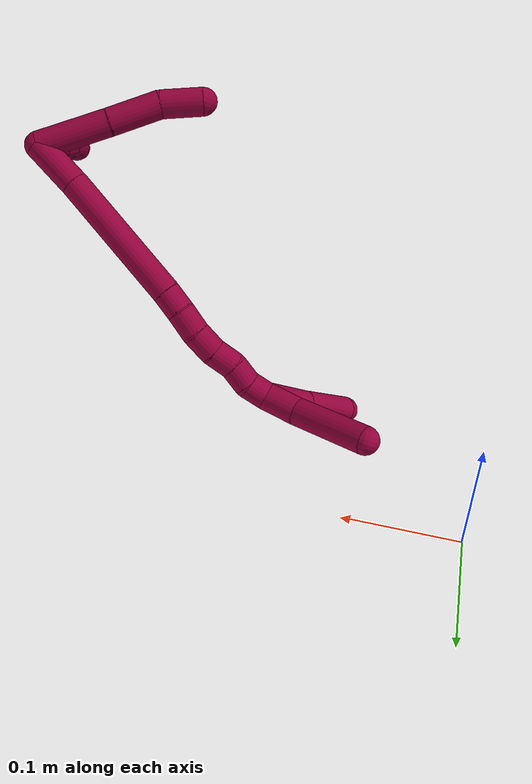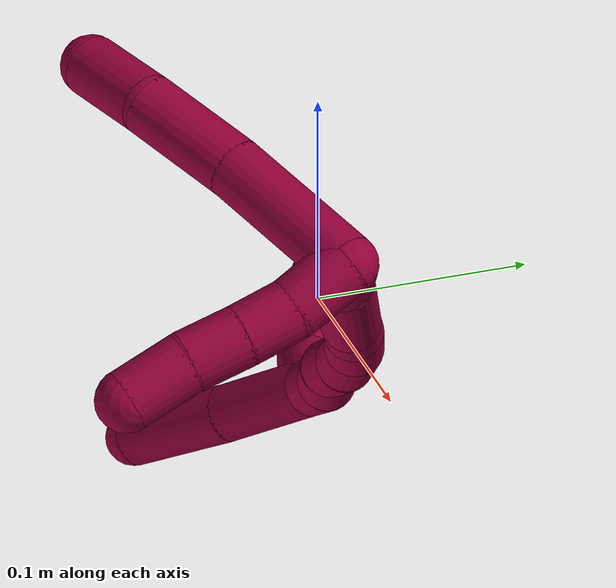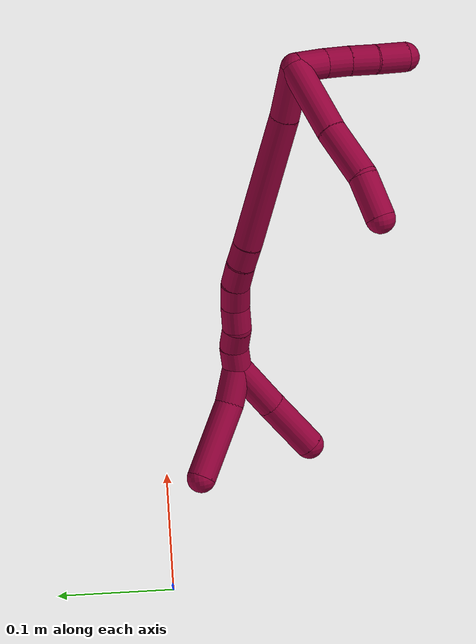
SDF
<sdf version="1.7">
 <world name="default">
  <model name="8">
   <static>0</static>
   <link name="8">
    <collision name="collision-cylinder-e_1_2_8">
     <pose>-0.012413 0.015665 -0.025668 -2.59365 -0.391475 1.22884</pose>
     <geometry><cylinder><radius>0.0125</radius><length>0.065064</length></cylinder></geometry>
     <surface>
      <friction><ode><mu>1.16</mu><mu2>1.16</mu2><slip1>0</slip1><slip2>0</slip2></ode></friction>
      <contact><ode><kp>1e+06</kp><kd>1</kd><max_vel>0</max_vel><min_depth>0.001</min_depth></ode></contact>
     </surface>
    </collision>
    <visual name="visual-cylinder-e_1_2_8">
     <pose>-0.012413 0.015665 -0.025668 -2.59365 -0.391475 1.22884</pose>
     <geometry><cylinder><radius>0.0125</radius><length>0.065064</length></cylinder></geometry>
     <material><ambient>0.584314 0 0.227451 1</ambient></material>
    </visual>
    <collision name="collision-cylinder-e_2_8_9">
     <pose>-0.035643 0.041967 -0.06945 -2.61057 -0.475564 1.45596</pose>
     <geometry><cylinder><radius>0.0125</radius><length>0.047254</length></cylinder></geometry>
     <surface>
      <friction><ode><mu>1.16</mu><mu2>1.16</mu2><slip1>0</slip1><slip2>0</slip2></ode></friction>
      <contact><ode><kp>1e+06</kp><kd>1</kd><max_vel>0</max_vel><min_depth>0.001</min_depth></ode></contact>
     </surface>
    </collision>
    <visual name="visual-cylinder-e_2_8_9">
     <pose>-0.035643 0.041967 -0.06945 -2.61057 -0.475564 1.45596</pose>
     <geometry><cylinder><radius>0.0125</radius><length>0.047254</length></cylinder></geometry>
     <material><ambient>0.584314 0 0.227451 1</ambient></material>
    </visual>
    <collision name="collision-cylinder-e_3_9_6">
     <pose>-0.051355 0.058505 -0.104773 -2.81132 -0.262801 1.34095</pose>
     <geometry><cylinder><radius>0.0125</radius><length>0.037682</length></cylinder></geometry>
     <surface>
      <friction><ode><mu>1.16</mu><mu2>1.16</mu2><slip1>0</slip1><slip2>0</slip2></ode></friction>
      <contact><ode><kp>1e+06</kp><kd>1</kd><max_vel>0</max_vel><min_depth>0.001</min_depth></ode></contact>
     </surface>
    </collision>
    <visual name="visual-cylinder-e_3_9_6">
     <pose>-0.051355 0.058505 -0.104773 -2.81132 -0.262801 1.34095</pose>
     <geometry><cylinder><radius>0.0125</radius><length>0.037682</length></cylinder></geometry>
     <material><ambient>0.584314 0 0.227451 1</ambient></material>
    </visual>
    <collision name="collision-cylinder-e_1_2_10">
     <pose>-0.010539 -0.008611 -0.001442 1.73675 -0.878961 -1.01402</pose>
     <geometry><cylinder><radius>0.0125</radius><length>0.02737</length></cylinder></geometry>
     <surface>
      <friction><ode><mu>1.16</mu><mu2>1.16</mu2><slip1>0</slip1><slip2>0</slip2></ode></friction>
      <contact><ode><kp>1e+06</kp><kd>1</kd><max_vel>0</max_vel><min_depth>0.001</min_depth></ode></contact>
     </surface>
    </collision>
    <visual name="visual-cylinder-e_1_2_10">
     <pose>-0.010539 -0.008611 -0.001442 1.73675 -0.878961 -1.01402</pose>
     <geometry><cylinder><radius>0.0125</radius><length>0.02737</length></cylinder></geometry>
     <material><ambient>0.584314 0 0.227451 1</ambient></material>
    </visual>
    <collision name="collision-cylinder-e_2_10_11">
     <pose>-0.03068 -0.022308 -0.004297 1.84168 -1.06813 -1.32237</pose>
     <geometry><cylinder><radius>0.0125</radius><length>0.021915</length></cylinder></geometry>
     <surface>
      <friction><ode><mu>1.16</mu><mu2>1.16</mu2><slip1>0</slip1><slip2>0</slip2></ode></friction>
      <contact><ode><kp>1e+06</kp><kd>1</kd><max_vel>0</max_vel><min_depth>0.001</min_depth></ode></contact>
     </surface>
    </collision>
    <visual name="visual-cylinder-e_2_10_11">
     <pose>-0.03068 -0.022308 -0.004297 1.84168 -1.06813 -1.32237</pose>
     <geometry><cylinder><radius>0.0125</radius><length>0.021915</length></cylinder></geometry>
     <material><ambient>0.584314 0 0.227451 1</ambient></material>
    </visual>
    <collision name="collision-cylinder-e_3_11_12">
     <pose>-0.050724 -0.032497 -0.007644 1.93319 -1.08923 -1.44043</pose>
     <geometry><cylinder><radius>0.0125</radius><length>0.023565</length></cylinder></geometry>
     <surface>
      <friction><ode><mu>1.16</mu><mu2>1.16</mu2><slip1>0</slip1><slip2>0</slip2></ode></friction>
      <contact><ode><kp>1e+06</kp><kd>1</kd><max_vel>0</max_vel><min_depth>0.001</min_depth></ode></contact>
     </surface>
    </collision>
    <visual name="visual-cylinder-e_3_11_12">
     <pose>-0.050724 -0.032497 -0.007644 1.93319 -1.08923 -1.44043</pose>
     <geometry><cylinder><radius>0.0125</radius><length>0.023565</length></cylinder></geometry>
     <material><ambient>0.584314 0 0.227451 1</ambient></material>
    </visual>
    <collision name="collision-cylinder-e_4_12_5">
     <pose>-0.072414 -0.044901 -0.011695 1.85285 -0.976459 -1.23065</pose>
     <geometry><cylinder><radius>0.0125</radius><length>0.027149</length></cylinder></geometry>
     <surface>
      <friction><ode><mu>1.16</mu><mu2>1.16</mu2><slip1>0</slip1><slip2>0</slip2></ode></friction>
      <contact><ode><kp>1e+06</kp><kd>1</kd><max_vel>0</max_vel><min_depth>0.001</min_depth></ode></contact>
     </surface>
    </collision>
    <visual name="visual-cylinder-e_4_12_5">
     <pose>-0.072414 -0.044901 -0.011695 1.85285 -0.976459 -1.23065</pose>
     <geometry><cylinder><radius>0.0125</radius><length>0.027149</length></cylinder></geometry>
     <material><ambient>0.584314 0 0.227451 1</ambient></material>
    </visual>
    <collision name="collision-cylinder-e_1_2_13">
     <pose>0.008901 -0.005932 -0.020461 2.85943 0.395773 1.90901</pose>
     <geometry><cylinder><radius>0.0125</radius><length>0.046176</length></cylinder></geometry>
     <surface>
      <friction><ode><mu>1.16</mu><mu2>1.16</mu2><slip1>0</slip1><slip2>0</slip2></ode></friction>
      <contact><ode><kp>1e+06</kp><kd>1</kd><max_vel>0</max_vel><min_depth>0.001</min_depth></ode></contact>
     </surface>
    </collision>
    <visual name="visual-cylinder-e_1_2_13">
     <pose>0.008901 -0.005932 -0.020461 2.85943 0.395773 1.90901</pose>
     <geometry><cylinder><radius>0.0125</radius><length>0.046176</length></cylinder></geometry>
     <material><ambient>0.584314 0 0.227451 1</ambient></material>
    </visual>
    <collision name="collision-cylinder-e_2_13_14">
     <pose>0.045313 -0.028057 -0.094807 2.84965 0.454774 2.00957</pose>
     <geometry><cylinder><radius>0.0125</radius><length>0.125263</length></cylinder></geometry>
     <surface>
      <friction><ode><mu>1.16</mu><mu2>1.16</mu2><slip1>0</slip1><slip2>0</slip2></ode></friction>
      <contact><ode><kp>1e+06</kp><kd>1</kd><max_vel>0</max_vel><min_depth>0.001</min_depth></ode></contact>
     </surface>
    </collision>
    <visual name="visual-cylinder-e_2_13_14">
     <pose>0.045313 -0.028057 -0.094807 2.84965 0.454774 2.00957</pose>
     <geometry><cylinder><radius>0.0125</radius><length>0.125263</length></cylinder></geometry>
     <material><ambient>0.584314 0 0.227451 1</ambient></material>
    </visual>
    <collision name="collision-cylinder-e_3_14_15">
     <pose>0.077586 -0.047436 -0.157269 2.78598 0.47985 1.87448</pose>
     <geometry><cylinder><radius>0.0125</radius><length>0.02063</length></cylinder></geometry>
     <surface>
      <friction><ode><mu>1.16</mu><mu2>1.16</mu2><slip1>0</slip1><slip2>0</slip2></ode></friction>
      <contact><ode><kp>1e+06</kp><kd>1</kd><max_vel>0</max_vel><min_depth>0.001</min_depth></ode></contact>
     </surface>
    </collision>
    <visual name="visual-cylinder-e_3_14_15">
     <pose>0.077586 -0.047436 -0.157269 2.78598 0.47985 1.87448</pose>
     <geometry><cylinder><radius>0.0125</radius><length>0.02063</length></cylinder></geometry>
     <material><ambient>0.584314 0 0.227451 1</ambient></material>
    </visual>
    <collision name="collision-cylinder-e_4_15_16">
     <pose>0.086956 -0.055278 -0.175091 2.67505 0.418826 1.45954</pose>
     <geometry><cylinder><radius>0.0125</radius><length>0.02266</length></cylinder></geometry>
     <surface>
      <friction><ode><mu>1.16</mu><mu2>1.16</mu2><slip1>0</slip1><slip2>0</slip2></ode></friction>
      <contact><ode><kp>1e+06</kp><kd>1</kd><max_vel>0</max_vel><min_depth>0.001</min_depth></ode></contact>
     </surface>
    </collision>
    <visual name="visual-cylinder-e_4_15_16">
     <pose>0.086956 -0.055278 -0.175091 2.67505 0.418826 1.45954</pose>
     <geometry><cylinder><radius>0.0125</radius><length>0.02266</length></cylinder></geometry>
     <material><ambient>0.584314 0 0.227451 1</ambient></material>
    </visual>
    <collision name="collision-cylinder-e_5_16_17">
     <pose>0.094196 -0.064549 -0.194273 2.70675 0.235788 0.984308</pose>
     <geometry><cylinder><radius>0.0125</radius><length>0.022538</length></cylinder></geometry>
     <surface>
      <friction><ode><mu>1.16</mu><mu2>1.16</mu2><slip1>0</slip1><slip2>0</slip2></ode></friction>
      <contact><ode><kp>1e+06</kp><kd>1</kd><max_vel>0</max_vel><min_depth>0.001</min_depth></ode></contact>
     </surface>
    </collision>
    <visual name="visual-cylinder-e_5_16_17">
     <pose>0.094196 -0.064549 -0.194273 2.70675 0.235788 0.984308</pose>
     <geometry><cylinder><radius>0.0125</radius><length>0.022538</length></cylinder></geometry>
     <material><ambient>0.584314 0 0.227451 1</ambient></material>
    </visual>
    <collision name="collision-cylinder-e_6_17_18">
     <pose>0.098306 -0.071784 -0.214817 2.89949 0.134415 1.01079</pose>
     <geometry><cylinder><radius>0.0125</radius><length>0.02205</length></cylinder></geometry>
     <surface>
      <friction><ode><mu>1.16</mu><mu2>1.16</mu2><slip1>0</slip1><slip2>0</slip2></ode></friction>
      <contact><ode><kp>1e+06</kp><kd>1</kd><max_vel>0</max_vel><min_depth>0.001</min_depth></ode></contact>
     </surface>
    </collision>
    <visual name="visual-cylinder-e_6_17_18">
     <pose>0.098306 -0.071784 -0.214817 2.89949 0.134415 1.01079</pose>
     <geometry><cylinder><radius>0.0125</radius><length>0.02205</length></cylinder></geometry>
     <material><ambient>0.584314 0 0.227451 1</ambient></material>
    </visual>
    <collision name="collision-cylinder-e_7_18_19">
     <pose>0.10325 -0.078703 -0.234064 2.67979 0.344815 1.27506</pose>
     <geometry><cylinder><radius>0.0125</radius><length>0.020507</length></cylinder></geometry>
     <surface>
      <friction><ode><mu>1.16</mu><mu2>1.16</mu2><slip1>0</slip1><slip2>0</slip2></ode></friction>
      <contact><ode><kp>1e+06</kp><kd>1</kd><max_vel>0</max_vel><min_depth>0.001</min_depth></ode></contact>
     </surface>
    </collision>
    <visual name="visual-cylinder-e_7_18_19">
     <pose>0.10325 -0.078703 -0.234064 2.67979 0.344815 1.27506</pose>
     <geometry><cylinder><radius>0.0125</radius><length>0.020507</length></cylinder></geometry>
     <material><ambient>0.584314 0 0.227451 1</ambient></material>
    </visual>
    <collision name="collision-cylinder-e_8_19_1">
     <pose>0.10746 -0.085455 -0.25246 2.89543 0.073824 0.580198</pose>
     <geometry><cylinder><radius>0.0125</radius><length>0.020176</length></cylinder></geometry>
     <surface>
      <friction><ode><mu>1.16</mu><mu2>1.16</mu2><slip1>0</slip1><slip2>0</slip2></ode></friction>
      <contact><ode><kp>1e+06</kp><kd>1</kd><max_vel>0</max_vel><min_depth>0.001</min_depth></ode></contact>
     </surface>
    </collision>
    <visual name="visual-cylinder-e_8_19_1">
     <pose>0.10746 -0.085455 -0.25246 2.89543 0.073824 0.580198</pose>
     <geometry><cylinder><radius>0.0125</radius><length>0.020176</length></cylinder></geometry>
     <material><ambient>0.584314 0 0.227451 1</ambient></material>
    </visual>
    <collision name="collision-cylinder-e_1_1_20">
     <pose>0.11375 -0.084275 -0.276674 -2.89552 0.356199 -1.93774</pose>
     <geometry><cylinder><radius>0.0125</radius><length>0.031808</length></cylinder></geometry>
     <surface>
      <friction><ode><mu>1.16</mu><mu2>1.16</mu2><slip1>0</slip1><slip2>0</slip2></ode></friction>
      <contact><ode><kp>1e+06</kp><kd>1</kd><max_vel>0</max_vel><min_depth>0.001</min_depth></ode></contact>
     </surface>
    </collision>
    <visual name="visual-cylinder-e_1_1_20">
     <pose>0.11375 -0.084275 -0.276674 -2.89552 0.356199 -1.93774</pose>
     <geometry><cylinder><radius>0.0125</radius><length>0.031808</length></cylinder></geometry>
     <material><ambient>0.584314 0 0.227451 1</ambient></material>
    </visual>
    <collision name="collision-cylinder-e_2_20_4">
     <pose>0.134287 -0.065594 -0.3178 -2.62781 0.455244 -1.4453</pose>
     <geometry><cylinder><radius>0.0125</radius><length>0.068192</length></cylinder></geometry>
     <surface>
      <friction><ode><mu>1.16</mu><mu2>1.16</mu2><slip1>0</slip1><slip2>0</slip2></ode></friction>
      <contact><ode><kp>1e+06</kp><kd>1</kd><max_vel>0</max_vel><min_depth>0.001</min_depth></ode></contact>
     </surface>
    </collision>
    <visual name="visual-cylinder-e_2_20_4">
     <pose>0.134287 -0.065594 -0.3178 -2.62781 0.455244 -1.4453</pose>
     <geometry><cylinder><radius>0.0125</radius><length>0.068192</length></cylinder></geometry>
     <material><ambient>0.584314 0 0.227451 1</ambient></material>
    </visual>
    <collision name="collision-cylinder-e_1_1_21">
     <pose>0.098097 -0.096062 -0.28215 2.75321 -0.438769 -1.69598</pose>
     <geometry><cylinder><radius>0.0125</radius><length>0.047581</length></cylinder></geometry>
     <surface>
      <friction><ode><mu>1.16</mu><mu2>1.16</mu2><slip1>0</slip1><slip2>0</slip2></ode></friction>
      <contact><ode><kp>1e+06</kp><kd>1</kd><max_vel>0</max_vel><min_depth>0.001</min_depth></ode></contact>
     </surface>
    </collision>
    <visual name="visual-cylinder-e_1_1_21">
     <pose>0.098097 -0.096062 -0.28215 2.75321 -0.438769 -1.69598</pose>
     <geometry><cylinder><radius>0.0125</radius><length>0.047581</length></cylinder></geometry>
     <material><ambient>0.584314 0 0.227451 1</ambient></material>
    </visual>
    <collision name="collision-cylinder-e_2_21_3">
     <pose>0.075949 -0.112279 -0.323923 2.78801 -0.477366 -1.87491</pose>
     <geometry><cylinder><radius>0.0125</radius><length>0.052419</length></cylinder></geometry>
     <surface>
      <friction><ode><mu>1.16</mu><mu2>1.16</mu2><slip1>0</slip1><slip2>0</slip2></ode></friction>
      <contact><ode><kp>1e+06</kp><kd>1</kd><max_vel>0</max_vel><min_depth>0.001</min_depth></ode></contact>
     </surface>
    </collision>
    <visual name="visual-cylinder-e_2_21_3">
     <pose>0.075949 -0.112279 -0.323923 2.78801 -0.477366 -1.87491</pose>
     <geometry><cylinder><radius>0.0125</radius><length>0.052419</length></cylinder></geometry>
     <material><ambient>0.584314 0 0.227451 1</ambient></material>
    </visual>
    <collision name="collision-sphere-3">
     <pose>0.063907 -0.12034 -0.345762 0 -0 0</pose>
     <geometry><sphere><radius>0.0125</radius></sphere></geometry>
     <surface>
      <friction><ode><mu>1.16</mu><mu2>1.16</mu2><slip1>0</slip1><slip2>0</slip2></ode></friction>
      <contact><ode><kp>1e+06</kp><kd>1</kd><max_vel>0</max_vel><min_depth>0.001</min_depth></ode></contact>
     </surface>
    </collision>
    <visual name="visual-sphere-3">
     <pose>0.063907 -0.12034 -0.345762 0 -0 0</pose>
     <geometry><sphere><radius>0.0125</radius></sphere></geometry>
     <material><ambient>0.584314 0 0.227451 1</ambient></material>
    </visual>
    <collision name="collision-sphere-21">
     <pose>0.08799 -0.104218 -0.302083 0 -0 0</pose>
     <geometry><sphere><radius>0.0125</radius></sphere></geometry>
     <surface>
      <friction><ode><mu>1.16</mu><mu2>1.16</mu2><slip1>0</slip1><slip2>0</slip2></ode></friction>
      <contact><ode><kp>1e+06</kp><kd>1</kd><max_vel>0</max_vel><min_depth>0.001</min_depth></ode></contact>
     </surface>
    </collision>
    <visual name="visual-sphere-21">
     <pose>0.08799 -0.104218 -0.302083 0 -0 0</pose>
     <geometry><sphere><radius>0.0125</radius></sphere></geometry>
     <material><ambient>0.584314 0 0.227451 1</ambient></material>
    </visual>
    <collision name="collision-sphere-4">
     <pose>0.149279 -0.050543 -0.34447 0 -0 0</pose>
     <geometry><sphere><radius>0.0125</radius></sphere></geometry>
     <surface>
      <friction><ode><mu>1.16</mu><mu2>1.16</mu2><slip1>0</slip1><slip2>0</slip2></ode></friction>
      <contact><ode><kp>1e+06</kp><kd>1</kd><max_vel>0</max_vel><min_depth>0.001</min_depth></ode></contact>
     </surface>
    </collision>
    <visual name="visual-sphere-4">
     <pose>0.149279 -0.050543 -0.34447 0 -0 0</pose>
     <geometry><sphere><radius>0.0125</radius></sphere></geometry>
     <material><ambient>0.584314 0 0.227451 1</ambient></material>
    </visual>
    <collision name="collision-sphere-20">
     <pose>0.119296 -0.080645 -0.291131 0 -0 0</pose>
     <geometry><sphere><radius>0.0125</radius></sphere></geometry>
     <surface>
      <friction><ode><mu>1.16</mu><mu2>1.16</mu2><slip1>0</slip1><slip2>0</slip2></ode></friction>
      <contact><ode><kp>1e+06</kp><kd>1</kd><max_vel>0</max_vel><min_depth>0.001</min_depth></ode></contact>
     </surface>
    </collision>
    <visual name="visual-sphere-20">
     <pose>0.119296 -0.080645 -0.291131 0 -0 0</pose>
     <geometry><sphere><radius>0.0125</radius></sphere></geometry>
     <material><ambient>0.584314 0 0.227451 1</ambient></material>
    </visual>
    <collision name="collision-sphere-11">
     <pose>-0.040282 -0.027394 -0.00571 0 -0 0</pose>
     <geometry><sphere><radius>0.0125</radius></sphere></geometry>
     <surface>
      <friction><ode><mu>1.16</mu><mu2>1.16</mu2><slip1>0</slip1><slip2>0</slip2></ode></friction>
      <contact><ode><kp>1e+06</kp><kd>1</kd><max_vel>0</max_vel><min_depth>0.001</min_depth></ode></contact>
     </surface>
    </collision>
    <visual name="visual-sphere-11">
     <pose>-0.040282 -0.027394 -0.00571 0 -0 0</pose>
     <geometry><sphere><radius>0.0125</radius></sphere></geometry>
     <material><ambient>0.584314 0 0.227451 1</ambient></material>
    </visual>
    <collision name="collision-sphere-10">
     <pose>-0.021077 -0.017221 -0.002884 0 -0 0</pose>
     <geometry><sphere><radius>0.0125</radius></sphere></geometry>
     <surface>
      <friction><ode><mu>1.16</mu><mu2>1.16</mu2><slip1>0</slip1><slip2>0</slip2></ode></friction>
      <contact><ode><kp>1e+06</kp><kd>1</kd><max_vel>0</max_vel><min_depth>0.001</min_depth></ode></contact>
     </surface>
    </collision>
    <visual name="visual-sphere-10">
     <pose>-0.021077 -0.017221 -0.002884 0 -0 0</pose>
     <geometry><sphere><radius>0.0125</radius></sphere></geometry>
     <material><ambient>0.584314 0 0.227451 1</ambient></material>
    </visual>
    <collision name="collision-sphere-6">
     <pose>-0.056249 0.064405 -0.121984 0 -0 0</pose>
     <geometry><sphere><radius>0.0125</radius></sphere></geometry>
     <surface>
      <friction><ode><mu>1.16</mu><mu2>1.16</mu2><slip1>0</slip1><slip2>0</slip2></ode></friction>
      <contact><ode><kp>1e+06</kp><kd>1</kd><max_vel>0</max_vel><min_depth>0.001</min_depth></ode></contact>
     </surface>
    </collision>
    <visual name="visual-sphere-6">
     <pose>-0.056249 0.064405 -0.121984 0 -0 0</pose>
     <geometry><sphere><radius>0.0125</radius></sphere></geometry>
     <material><ambient>0.584314 0 0.227451 1</ambient></material>
    </visual>
    <collision name="collision-sphere-9">
     <pose>-0.04646 0.052604 -0.087562 0 -0 0</pose>
     <geometry><sphere><radius>0.0125</radius></sphere></geometry>
     <surface>
      <friction><ode><mu>1.16</mu><mu2>1.16</mu2><slip1>0</slip1><slip2>0</slip2></ode></friction>
      <contact><ode><kp>1e+06</kp><kd>1</kd><max_vel>0</max_vel><min_depth>0.001</min_depth></ode></contact>
     </surface>
    </collision>
    <visual name="visual-sphere-9">
     <pose>-0.04646 0.052604 -0.087562 0 -0 0</pose>
     <geometry><sphere><radius>0.0125</radius></sphere></geometry>
     <material><ambient>0.584314 0 0.227451 1</ambient></material>
    </visual>
    <collision name="collision-sphere-2">
     <geometry><sphere><radius>0.0125</radius></sphere></geometry>
     <surface>
      <friction><ode><mu>1.16</mu><mu2>1.16</mu2><slip1>0</slip1><slip2>0</slip2></ode></friction>
      <contact><ode><kp>1e+06</kp><kd>1</kd><max_vel>0</max_vel><min_depth>0.001</min_depth></ode></contact>
     </surface>
    </collision>
    <visual name="visual-sphere-2">
     <geometry><sphere><radius>0.0125</radius></sphere></geometry>
     <material><ambient>0.584314 0 0.227451 1</ambient></material>
    </visual>
    <collision name="collision-sphere-19">
     <pose>0.106716 -0.083003 -0.242703 0 -0 0</pose>
     <geometry><sphere><radius>0.0125</radius></sphere></geometry>
     <surface>
      <friction><ode><mu>1.16</mu><mu2>1.16</mu2><slip1>0</slip1><slip2>0</slip2></ode></friction>
      <contact><ode><kp>1e+06</kp><kd>1</kd><max_vel>0</max_vel><min_depth>0.001</min_depth></ode></contact>
     </surface>
    </collision>
    <visual name="visual-sphere-19">
     <pose>0.106716 -0.083003 -0.242703 0 -0 0</pose>
     <geometry><sphere><radius>0.0125</radius></sphere></geometry>
     <material><ambient>0.584314 0 0.227451 1</ambient></material>
    </visual>
    <collision name="collision-sphere-8">
     <pose>-0.024825 0.031329 -0.051337 0 -0 0</pose>
     <geometry><sphere><radius>0.0125</radius></sphere></geometry>
     <surface>
      <friction><ode><mu>1.16</mu><mu2>1.16</mu2><slip1>0</slip1><slip2>0</slip2></ode></friction>
      <contact><ode><kp>1e+06</kp><kd>1</kd><max_vel>0</max_vel><min_depth>0.001</min_depth></ode></contact>
     </surface>
    </collision>
    <visual name="visual-sphere-8">
     <pose>-0.024825 0.031329 -0.051337 0 -0 0</pose>
     <geometry><sphere><radius>0.0125</radius></sphere></geometry>
     <material><ambient>0.584314 0 0.227451 1</ambient></material>
    </visual>
    <collision name="collision-sphere-12">
     <pose>-0.061167 -0.0376 -0.009579 0 -0 0</pose>
     <geometry><sphere><radius>0.0125</radius></sphere></geometry>
     <surface>
      <friction><ode><mu>1.16</mu><mu2>1.16</mu2><slip1>0</slip1><slip2>0</slip2></ode></friction>
      <contact><ode><kp>1e+06</kp><kd>1</kd><max_vel>0</max_vel><min_depth>0.001</min_depth></ode></contact>
     </surface>
    </collision>
    <visual name="visual-sphere-12">
     <pose>-0.061167 -0.0376 -0.009579 0 -0 0</pose>
     <geometry><sphere><radius>0.0125</radius></sphere></geometry>
     <material><ambient>0.584314 0 0.227451 1</ambient></material>
    </visual>
    <collision name="collision-sphere-5">
     <pose>-0.08366 -0.052201 -0.01381 0 -0 0</pose>
     <geometry><sphere><radius>0.0125</radius></sphere></geometry>
     <surface>
      <friction><ode><mu>1.16</mu><mu2>1.16</mu2><slip1>0</slip1><slip2>0</slip2></ode></friction>
      <contact><ode><kp>1e+06</kp><kd>1</kd><max_vel>0</max_vel><min_depth>0.001</min_depth></ode></contact>
     </surface>
    </collision>
    <visual name="visual-sphere-5">
     <pose>-0.08366 -0.052201 -0.01381 0 -0 0</pose>
     <geometry><sphere><radius>0.0125</radius></sphere></geometry>
     <material><ambient>0.584314 0 0.227451 1</ambient></material>
    </visual>
    <collision name="collision-sphere-13">
     <pose>0.017802 -0.011863 -0.040922 0 -0 0</pose>
     <geometry><sphere><radius>0.0125</radius></sphere></geometry>
     <surface>
      <friction><ode><mu>1.16</mu><mu2>1.16</mu2><slip1>0</slip1><slip2>0</slip2></ode></friction>
      <contact><ode><kp>1e+06</kp><kd>1</kd><max_vel>0</max_vel><min_depth>0.001</min_depth></ode></contact>
     </surface>
    </collision>
    <visual name="visual-sphere-13">
     <pose>0.017802 -0.011863 -0.040922 0 -0 0</pose>
     <geometry><sphere><radius>0.0125</radius></sphere></geometry>
     <material><ambient>0.584314 0 0.227451 1</ambient></material>
    </visual>
    <collision name="collision-sphere-14">
     <pose>0.072825 -0.044251 -0.148691 0 -0 0</pose>
     <geometry><sphere><radius>0.0125</radius></sphere></geometry>
     <surface>
      <friction><ode><mu>1.16</mu><mu2>1.16</mu2><slip1>0</slip1><slip2>0</slip2></ode></friction>
      <contact><ode><kp>1e+06</kp><kd>1</kd><max_vel>0</max_vel><min_depth>0.001</min_depth></ode></contact>
     </surface>
    </collision>
    <visual name="visual-sphere-14">
     <pose>0.072825 -0.044251 -0.148691 0 -0 0</pose>
     <geometry><sphere><radius>0.0125</radius></sphere></geometry>
     <material><ambient>0.584314 0 0.227451 1</ambient></material>
    </visual>
    <collision name="collision-sphere-15">
     <pose>0.082348 -0.050622 -0.165846 0 -0 0</pose>
     <geometry><sphere><radius>0.0125</radius></sphere></geometry>
     <surface>
      <friction><ode><mu>1.16</mu><mu2>1.16</mu2><slip1>0</slip1><slip2>0</slip2></ode></friction>
      <contact><ode><kp>1e+06</kp><kd>1</kd><max_vel>0</max_vel><min_depth>0.001</min_depth></ode></contact>
     </surface>
    </collision>
    <visual name="visual-sphere-15">
     <pose>0.082348 -0.050622 -0.165846 0 -0 0</pose>
     <geometry><sphere><radius>0.0125</radius></sphere></geometry>
     <material><ambient>0.584314 0 0.227451 1</ambient></material>
    </visual>
    <collision name="collision-sphere-16">
     <pose>0.091564 -0.059933 -0.184335 0 -0 0</pose>
     <geometry><sphere><radius>0.0125</radius></sphere></geometry>
     <surface>
      <friction><ode><mu>1.16</mu><mu2>1.16</mu2><slip1>0</slip1><slip2>0</slip2></ode></friction>
      <contact><ode><kp>1e+06</kp><kd>1</kd><max_vel>0</max_vel><min_depth>0.001</min_depth></ode></contact>
     </surface>
    </collision>
    <visual name="visual-sphere-16">
     <pose>0.091564 -0.059933 -0.184335 0 -0 0</pose>
     <geometry><sphere><radius>0.0125</radius></sphere></geometry>
     <material><ambient>0.584314 0 0.227451 1</ambient></material>
    </visual>
    <collision name="collision-sphere-17">
     <pose>0.096829 -0.069165 -0.20421 0 -0 0</pose>
     <geometry><sphere><radius>0.0125</radius></sphere></geometry>
     <surface>
      <friction><ode><mu>1.16</mu><mu2>1.16</mu2><slip1>0</slip1><slip2>0</slip2></ode></friction>
      <contact><ode><kp>1e+06</kp><kd>1</kd><max_vel>0</max_vel><min_depth>0.001</min_depth></ode></contact>
     </surface>
    </collision>
    <visual name="visual-sphere-17">
     <pose>0.096829 -0.069165 -0.20421 0 -0 0</pose>
     <geometry><sphere><radius>0.0125</radius></sphere></geometry>
     <material><ambient>0.584314 0 0.227451 1</ambient></material>
    </visual>
    <collision name="collision-sphere-18">
     <pose>0.099784 -0.074404 -0.225424 0 -0 0</pose>
     <geometry><sphere><radius>0.0125</radius></sphere></geometry>
     <surface>
      <friction><ode><mu>1.16</mu><mu2>1.16</mu2><slip1>0</slip1><slip2>0</slip2></ode></friction>
      <contact><ode><kp>1e+06</kp><kd>1</kd><max_vel>0</max_vel><min_depth>0.001</min_depth></ode></contact>
     </surface>
    </collision>
    <visual name="visual-sphere-18">
     <pose>0.099784 -0.074404 -0.225424 0 -0 0</pose>
     <geometry><sphere><radius>0.0125</radius></sphere></geometry>
     <material><ambient>0.584314 0 0.227451 1</ambient></material>
    </visual>
    <collision name="collision-sphere-1">
     <pose>0.108204 -0.087906 -0.262217 0 -0 0</pose>
     <geometry><sphere><radius>0.0125</radius></sphere></geometry>
     <surface>
      <friction><ode><mu>1.16</mu><mu2>1.16</mu2><slip1>0</slip1><slip2>0</slip2></ode></friction>
      <contact><ode><kp>1e+06</kp><kd>1</kd><max_vel>0</max_vel><min_depth>0.001</min_depth></ode></contact>
     </surface>
    </collision>
    <visual name="visual-sphere-1">
     <pose>0.108204 -0.087906 -0.262217 0 -0 0</pose>
     <geometry><sphere><radius>0.0125</radius></sphere></geometry>
     <material><ambient>0.584314 0 0.227451 1</ambient></material>
    </visual>
    <inertial>
     <pose>0.041479 -0.036677 -0.145932 0 -0 0</pose>
     <mass>0.75</mass>
     <inertia>
      <ixx>7.8e-05</ixx>
      <ixy>0</ixy>
      <ixz>0</ixz>
      <iyy>0.000238</iyy>
      <iyz>0</iyz>
      <izz>-7.4e-05</izz>
     </inertia>
    </inertial>
   </link>
   <pose>0.405724 -0.125573 0.249315 1.23803 0.184314 1.63871</pose>
  </model>
 </world>
</sdf>
